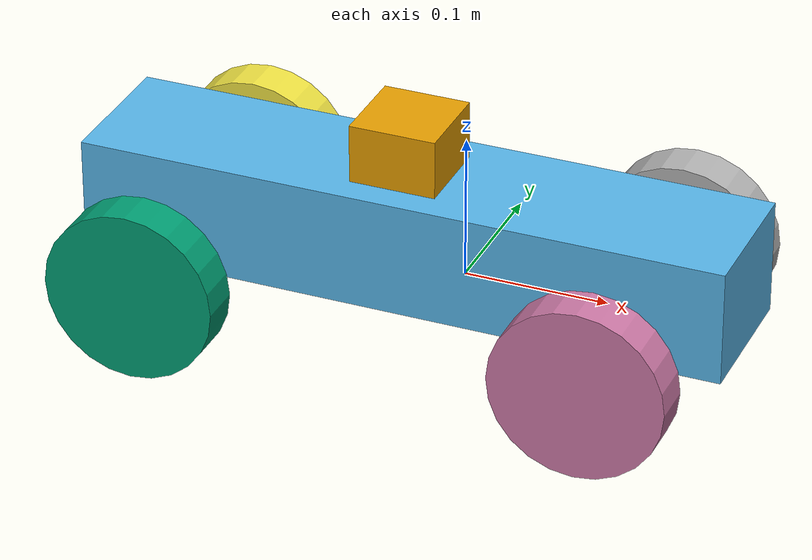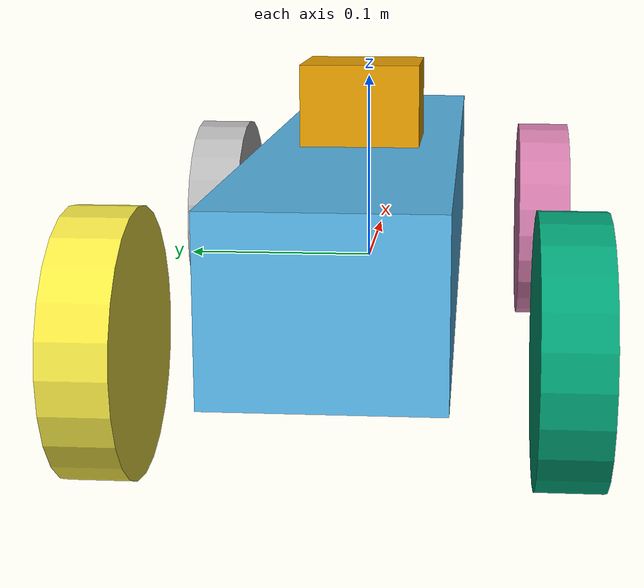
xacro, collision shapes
<?xml version="1.0"?>
<robot xmlns:xacro="http://www.ros.org/wiki/xacro" name="rover_ackermann">

    <xacro:include filename="rover_core.xacro" />
    <xacro:include filename="lidar.xacro" />
    <xacro:include filename="gazebo_plugins.xacro" />

    <xacro:lidar_sensor parent_link="base_link" x="-0.04" y="0" z="0.07" />

</robot>

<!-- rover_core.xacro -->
<robot xmlns:xacro="http://www.ros.org/wiki/xacro">

    <xacro:property name="chassis_mass" value="3.0"/>
    <xacro:property name="wheel_mass" value="0.2"/>
    <xacro:property name="steering_mass" value="0.1"/>

    <xacro:property name="wheel_separation_width" value="0.2"/>
    <xacro:property name="wheel_base_length" value="0.312"/>

    <link name="base_footprint"/>

    <joint name="base_joint" type="fixed">
        <parent link="base_footprint"/>
        <child link="base_link"/>
        <origin xyz="0 0 0" rpy="0 0 0"/>
    </joint>

    <link name="base_link">
        <visual>
            <origin xyz="0 0 -0.0115" rpy="-0.018 0 -1.5707"/>
            <geometry>
                <mesh filename="package://rover/meshes/MainBody.dae"/>
            </geometry>
        </visual>
        <collision>
            <origin xyz="-0.03 0 0.03" rpy="0 0 0"/>
            <geometry>
                <box size=".45 .1 .08"/>
            </geometry>
        </collision>
        <inertial>
            <mass value="${chassis_mass}"/>
            <inertia ixx="0.0054" ixy="0" ixz="0" iyy="0.0252" iyz="0" izz="0.0252"/>
        </inertial>
    </link>

    <xacro:macro name="wheel" params="prefix parent x_pos y_pos flip_visual">
        <link name="${prefix}_wheel">
            <visual>
                <origin xyz="0 -0.02 0" rpy="0 0 ${pi}"/>
                <geometry>
                    <mesh filename="package://rover/meshes/Wheel.dae"/>
                </geometry>
            </visual>
            <collision>
                <origin xyz="0 0 0" rpy="-1.5707 0 0"/>
                <geometry>
                    <cylinder length="0.03" radius="0.06"/>
                </geometry>
            </collision>
            <inertial>
                <mass value="${wheel_mass}"/>
                <inertia ixx="0.00024" ixy="0" ixz="0" iyy="0.00036" iyz="0" izz="0.00024"/>
            </inertial>
        </link>

        <joint name="${prefix}_wheel_joint" type="revolute">
            <parent link="${parent}"/>
            <child link="${prefix}_wheel"/>
            <origin xyz="${x_pos} ${y_pos} 0" rpy="0 0 0"/>
            <axis xyz="0 1 0"/>
            <limit lower="-1e16" upper="1e16" effort="100" velocity="20"/>
        </joint>
    </xacro:macro>

    <xacro:macro name="steering_link" params="prefix y_pos">
        <link name="${prefix}_steering">
            <inertial>
                <mass value="${steering_mass}"/>
                <inertia ixx="0.0001" ixy="0" ixz="0" iyy="0.0001" iyz="0" izz="0.0001"/>
            </inertial>
        </link>

        <joint name="${prefix}_steering_joint" type="revolute">
            <parent link="base_link"/>
            <child link="${prefix}_steering"/>
            <origin xyz="0.120 ${y_pos} 0" rpy="0 0 0"/>
            <axis xyz="0 0 1"/>
            <limit lower="-0.52" upper="0.52" effort="1e6" velocity="10"/>
        </joint>
    </xacro:macro>

    <xacro:wheel prefix="rear_right" parent="base_link" x_pos="-0.192" y_pos="-0.1" flip_visual="false"/>
    <xacro:wheel prefix="rear_left" parent="base_link" x_pos="-0.192" y_pos="0.1" flip_visual="false"/>

    <xacro:steering_link prefix="front_right" y_pos="-0.1"/>
    <xacro:steering_link prefix="front_left" y_pos="0.1"/>

    <xacro:wheel prefix="front_right" parent="front_right_steering" x_pos="0" y_pos="0" flip_visual="false"/>
    <xacro:wheel prefix="front_left" parent="front_left_steering" x_pos="0" y_pos="0" flip_visual="false"/>

</robot>

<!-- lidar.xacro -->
<robot xmlns:xacro="http://www.ros.org/wiki/xacro">
    <xacro:macro name="lidar_sensor" params="parent_link x y z">

        <joint name="lidar_joint" type="fixed">
            <parent link="${parent_link}"/>
            <child link="lidar_link"/>
            <origin xyz="${x} ${y} ${z}" rpy="0 0 0"/>
        </joint>

        <link name="lidar_link">
            <inertial>
                <origin xyz="0 0 0.0435" rpy="0 0 0"/>
                <mass value="0.37"/>
                <inertia ixx="0.000344" ixy="0" ixz="0" iyy="0.000344" iyz="0" izz="0.000222"/>
            </inertial>
            <visual>
                <origin xyz="0 0 0" rpy="0 0 0"/>
                <geometry>
                    <mesh filename="package://rover/meshes/lidar_2d_v2.dae"/>
                </geometry>
            </visual>
            <collision>
                 <origin xyz="0 0 0.0205" rpy="0 0 0"/>
                 <geometry><box size="0.06 0.06 0.041"/></geometry>
            </collision>
        </link>

        <gazebo reference="lidar_link">
         <sensor name="lidar_2d_v2" type="gpu_lidar">
            <pose>0 0 0 0 0 0</pose>
            <always_on>true</always_on>
            <visualize>true</visualize>
            <update_rate>10</update_rate>
            <ray>
                <scan>
                    <horizontal>
                        <samples>360</samples>
                        <resolution>1</resolution>
                        <min_angle>-3.14</min_angle>
                        <max_angle>3.14</max_angle>
                    </horizontal>
                </scan>
                <range>
                    <min>0.3</min>
                    <max>12</max>
                </range>
            </ray>

            <frame_id>lidar_link</frame_id>
            <topic>scan</topic>
         </sensor>
        </gazebo>
    </xacro:macro>
</robot>
